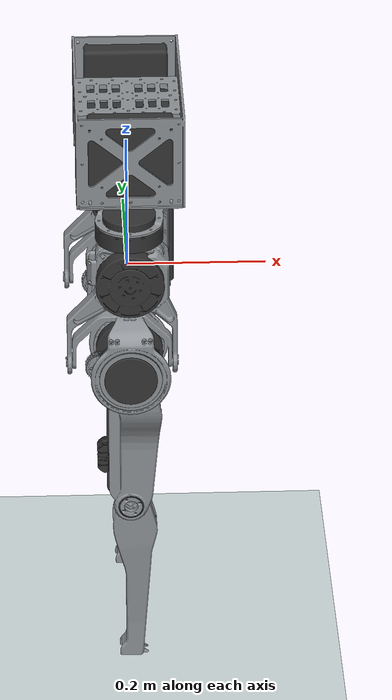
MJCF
<mujoco model="TELLO">

  <size njmax = "500" nconmax = "100" />

  <compiler angle = 'radian' inertiafromgeom = "false" meshdir = "meshes-rev/"/>
  <option timestep='0.001' iterations='50' solver='PGS' gravity='0 0 -9.81'/>
	<default>
    <joint limited='true' damping="10"/>
    <motor ctrllimited='true'/>
    <geom contype='0' conaffinity='0' condim='1' solref="0.0001 5"/><!--solref='0.005 1'-->
    <default class='TELLO'>
    </default>
    <default class='collision'>
      <!-- User parameter for geoms is used to identify collision types -->
      <geom contype='1' user='2' />
      <default class='collision-left'>
        <geom contype='2' conaffinity='4' />
      </default>
      <default class='collision-right'>
        <geom contype='4' conaffinity='2' />
      </default>
    </default>
    <default class='obstacle'>
      <geom material='obstacle' condim='3' contype='8' conaffinity='15' user='1'/>
    </default>
  </default>

  <asset>

    <mesh name="torso_link" file="body_torso-silver.STL"/>
    <mesh name="right_hip_clamp" file="body_left_hipClamp-silver.STL"/>
    <mesh name="right_hip_gimbal" file="body_gimbal.STL"/>
    <mesh name="right_thigh" file="body_left_thigh-silver.STL"/>
    <mesh name="right_shin" file="body_left_shin.STL"/>
    <mesh name="right_foot" file="body_left_foot-silver.STL"/>
    <mesh name="left_hip_clamp" file="body_left_hipClamp-silver.STL"/>
    <mesh name="left_hip_gimbal" file="body_gimbal.STL"/>
    <mesh name="left_thigh" file="body_left_thigh-silver.STL"/>
    <mesh name="left_shin" file="body_left_shin.STL"/>
    <mesh name="left_foot" file="body_left_foot-silver.STL"/>

    <mesh name="torso_link-black" file="body_torso-black.STL"/>
    <mesh name="right_hip_clamp-black" file="body_left_hipClamp-black.STL"/>
    <mesh name="right_thigh-black" file="body_left_thigh-black.STL"/>
    <mesh name="right_foot-black" file="body_left_foot-black.STL"/>
    <mesh name="left_hip_clamp-black" file="body_left_hipClamp-black.STL"/>
    <mesh name="left_thigh-black" file="body_left_thigh-black.STL"/>
    <mesh name="left_foot-black" file="body_left_foot-black.STL"/>

	<mesh name="target1-rounded" file="target.STL"/>

	<texture type = "skybox" builtin = "gradient" width = "128" height = "128" rgb1 = "0.5 0.7 0.8"
         rgb2="0.92 0.74 0.74 "/>
    <texture name = "texgeom" type = "cube" builtin = "flat" mark = "cross" width = "127" height = "1278"
         rgb1 = "0.9 0.7 0.5" rgb2 = "0.8 0.6 0.4" markrgb = "1 1 1" random = "0.01"/>
     <texture name = "texplane" type = "2d" builtin = "checker" width = "512" height = "512" rgb1 = "0.9 0.9 0.95"
         rgb2 = "0.54 0.58 0.62"/>
     <material name = 'MatPlane' reflectance = '0.0' texture = "texplane" texrepeat = "1 1" texuniform = "true"/>

	 <texture name = "texplane2" type = "2d" file="wall4.png" width = "512" height = "512"/>
     <material name = 'MatPlane2' reflectance = '0.0' texture = "texplane2" texrepeat = "1 2" texuniform = "true"/>

	 <texture name = "texplane3" type = "2d" file="aluminum1.png" width = "512" height = "512"/>
     <material name = 'MatPlane3' reflectance = '1000' texture = "texplane3" texrepeat = "10 40" texuniform = "true"/>
     <material name = 'MatPlane4' reflectance = '1000' texture = "texplane3" texrepeat = "50 20" texuniform = "true"/>

	 <texture name = "texplane5" type = "2d" file="tile1.png" width = "512" height = "512"/>
     <material name = 'MatPlane5' reflectance = '0.0' texture = "texplane5" texrepeat = "2 1" texuniform = "true"/>

  </asset>

  <worldbody>

  	<body name = 'dummy' pos = '0 0 0'>
	<inertial pos = '0.0 0.0 0.0' mass = '4.2587' diaginertia = '0.013122 0.0078744 0.013624'/>
	<joint axis = "1 0 0" pos = "0 0 0" name = "move_x" type = "slide" limited = "false" damping="0"/>
		<joint axis = "0 1 0" pos = "0 0 0" name = "move_y" type = "slide" limited = "false" damping="0"/>
		<joint axis = "0 0 1" pos = "0 0 0" name = "move_z" type = "slide" limited = "false" damping="0"/>
		<joint axis = "1 0 0" pos = "0 0 0" name = "rotate_roll" type = "hinge" limited = "false" damping="0"/>
		<joint axis = "0 1 0" pos = "0 0 0" name = "rotate_pitch" type = "hinge" limited = "false" damping="0"/>
		<joint axis = "0 0 1" pos = "0 0 0" name = "rotate_yaw" type = "hinge" limited = "false" damping="0"/>
	</body>

 	<geom name ='floor' pos ='0 0 -0.58' size ='20 10 .125' type = 'plane' material ='MatPlane' rgba="0.79 0.84 0.84 1" condim = '3' conaffinity = '15'/>
	<light directional = 'true' pos = '0 0 3' dir = '0 0 -1' diffuse = '0.2 0.2 0.2' specular = '0 0 0' castshadow="false"/>
    <light name="com_light" mode='trackcom' pos='3 0 3' dir='-1 0 -1' castshadow="true"/>
	<light name="com_light_2" mode='trackcom' pos='0 20 10' dir='0 -1 -1' castshadow="false"/>
	<light name="back_light" mode='trackcom' pos='-30 0 30' dir='1 0 -1' castshadow="false"/>

	<body name = 'torso' mocap="true" pos = '0 0 0'>

		<site name='imu' size='0.01' rgba="0.5 0.5 0.5 0.0" pos='-0.06 0 0.155'/>
        <inertial pos = '0.0 0.0 0.0' mass = '4.2587' diaginertia = '0.013122 0.0078744 0.013624'/>
		<geom quat="0 0 0 1" type="mesh" material ='MatPlane3' rgba="0.549 0.565 0.580 1" mesh="torso_link" contype='0'/>
        <geom quat="0 0 0 1" type="mesh" material ='MatPlane4' rgba="0.2 0.2 0.2 1" mesh="torso_link-black" contype='0'/>
		<geom name="torso_box" pos="0 0 0.01" size="0.07 0.15 0.15" type="box" rgba="0.1 0.4 0.1 0.0" class="collision"/>

		<body name="right_hip_clamp" pos="0 -0.126 0.0545" quat="1 0 0 0" gravcomp="0">

		  <inertial pos="4.44319E-05 -0.011651 -0.006856" quat="0 0 0 1" mass="1.3787" diaginertia="0.00146238287829404 0.00273729393380137 0.0014215626389636"/>
		  <joint name="right_hip_yaw" pos="0 0 0" axis="0 0 1" limited = "true" range = "-0.4363 0.4363" armature=" 0.006"/>
		  <geom type="mesh" material ='MatPlane3' rgba="0.549 0.565 0.580 1" mesh="right_hip_clamp" contype='0'/>
          <geom type="mesh" material ='MatPlane4' rgba="0.2 0.2 0.2 1" mesh="right_hip_clamp-black" contype='0'/>

		  <body name="right_hip_gimbal" pos="0 0 -0.1425" gravcomp="0">

			<inertial pos="-0.0029449 0 0.02492554" quat="0 0 0 1" mass="0.4589" diaginertia="0.000481462682576961 0.000667169674942171 0.000497975686833487"/>
			<joint name="right_hip_roll" pos="0 0 0" axis="1 0 0" limited = "true" range = "-0.6491 0.6491" armature=" 0.006"/>
			<geom type="mesh" material ='MatPlane3' rgba="0.549 0.565 0.580 1" mesh="right_hip_gimbal" contype='0'/>
			<geom name = "right_hip_gimbal_sphere" pos = "0 0 0"  size = "0.06" type="sphere" rgba = "0.1 0.4 0.1 0.0"  class = "collision-right"/>

			<body name="right_thigh" pos="0 0 0" gravcomp="0">

			  <inertial pos="-0.008193 8.0336E-05 -0.0465117" quat="0 0 0 1" mass="1.7145" diaginertia="0.00379144706855402 0.00440910409346791 0.000892300490534084"/>
			  <joint name="right_hip_pitch" pos="0 0 0" axis="0 1 0" limited = "true" range = "-1.5708 0.4014" armature=" 0.006"/>
			  <geom type="mesh" material ='MatPlane3' rgba="0.549 0.565 0.580 1" mesh="right_thigh" contype='0'/>
              <geom type="mesh" material ='MatPlane4' rgba="0.2 0.2 0.2 1" mesh="right_thigh-black" contype='0'/>

			  <body name="right_shin" pos="0 0 -0.2286" gravcomp="0">

				<inertial pos="0.0047419 -0.0003324 -0.104315" quat="0 0 0 1" mass="0.3071" diaginertia="0.00196114277995999 0.00202057471858548 7.91059574612859E-05"/>
				<joint name="right_knee" pos="0 0 0" axis="0 1 0" limited = "true" range = "0.2852 2.0305" armature=" 0.006"/>
				<geom type="mesh" material ='MatPlane3' rgba="0.549 0.565 0.580 1" mesh="right_shin" contype='0'/>
				<geom name = "right_knee_sphere" pos = "0 0 0"  size = "0.03" type="sphere" rgba = "0.1 0.4 0.1 0.0"  class = "collision-right"/>

				<body name="right_foot" pos="0 0 -0.26" quat="0 0 0 1" gravcomp="0">

				  <inertial pos="0.0033954 0 -0.0283579" quat="0 0 0 1" mass="0.14232" diaginertia="1.19095587491302E-05 0.000133626524087711 0.000131614380502955"/>
				  <joint name="right_ankle" pos="0 0 0" axis="0 -1 0" limited = "true" range = "-0.785398 0.785398" armature=" 0.006" damping="1"/>
				  <geom name = "rfoot" type="mesh" material ='MatPlane3' rgba="0.549 0.565 0.580 1" mesh="right_foot" euler="0 0 3.14159265359" contype='0'/>
                  <geom name = "rfootb" type="mesh" material ='MatPlane4' rgba="0.2 0.2 0.2 1" mesh="right_foot-black" euler="0 0 3.14159265359" contype='0'/>
 				  <geom name = "right_foot_heel" pos = "-0.06 0 -0.0516"  size = "0.001" type="sphere" rgba = "0.1 0.4 0.1 0.2"  class = "collision-right"/>
				  <geom name = "right_foot_toe" pos = "0.06 0 -0.0516"  size = "0.001" type="sphere" rgba = "0.1 0.4 0.1 0.2"  class = "collision-right"/>

				  <geom name = "rfh" pos = "-0.06 0 -0.0516"  size = "0.001" type="sphere" rgba = "0.1 0.4 0.1 0.2"  contype='0'/>
				  <geom name = "rft" pos = "0.06 0 -0.0516"  size = "0.001" type="sphere" rgba = "0.1 0.4 0.1 0.2"  contype='0'/>

				</body>

			  </body>

			</body>

		  </body>

		</body>

		<body name="left_hip_clamp" pos="0 0.126 0.0545" quat="1 0 0 0" gravcomp="0">

		  <inertial pos="4.44319E-05 -0.011651 -0.006856" quat="0 0 0 1" mass="1.3787" diaginertia="0.00146238287829404 0.00273729393380137 0.0014215626389636"/>
		  <joint name="left_hip_yaw" pos="0 0 0" axis="0 0 1" limited = "true" range = "-0.4363 0.4363" armature=" 0.006"/>
		  <geom type="mesh" material ='MatPlane3' rgba="0.549 0.565 0.580 1" mesh="left_hip_clamp" contype='0'/>
          <geom type="mesh" material ='MatPlane4' rgba="0.2 0.2 0.2 1" mesh="left_hip_clamp-black" contype='0'/>

		  <body name="left_hip_gimbal" pos="0 0 -0.1425" gravcomp="0">

			<inertial pos="-0.0029449 0 0.02492554" quat="0 0 0 1" mass="0.4589" diaginertia="0.000481462682576961 0.000667169674942171 0.000497975686833487"/>
			<joint name="left_hip_roll" pos="0 0 0" axis="1 0 0" limited = "true" range = "-0.64910 0.6491" armature=" 0.006"/>
			<geom type="mesh" material ='MatPlane3' rgba="0.549 0.565 0.580 1" mesh="left_hip_gimbal" contype='0'/>
			<geom name = "left_hip_gimbal_sphere" pos = "0 0 0"  size = "0.06" type="sphere" rgba = "0.1 0.4 0.1 0.0"  class = "collision-left"/>

			<body name="left_thigh" pos="0 0 0" gravcomp="0">

			  <inertial pos="-0.008193 8.0336E-05 -0.0465117" quat="0 0 0 1" mass="1.7145" diaginertia="0.00379144706855402 0.00440910409346791 0.000892300490534084"/>
			  <joint name="left_hip_pitch" pos="0 0 0" axis="0 1 0" limited = "true" range = "-1.5708 0.4014" armature=" 0.006"/>
			  <geom type="mesh" material ='MatPlane3' rgba="0.549 0.565 0.580 1" mesh="left_thigh" contype='0'/>
              <geom type="mesh" material ='MatPlane4' rgba="0.2 0.2 0.2 1" mesh="left_thigh-black" contype='0'/>

			  <body name="left_shin" pos="0 0 -0.2286" gravcomp="0">

				<inertial pos="0.0047419 -0.0003324 -0.104315" quat="0 0 0 1" mass="0.3071" diaginertia="0.00196114277995999 0.00202057471858548 7.91059574612859E-05"/>
				<joint name="left_knee" pos="0 0 0" axis="0 1 0" limited = "true" range = "0.2852 2.0305" armature=" 0.006"/>
				<geom type="mesh" material ='MatPlane3' rgba="0.549 0.565 0.580 1" mesh="left_shin" contype='0'/>
				<geom name = "left_knee_sphere" pos = "0 0 0"  size = "0.03" type="sphere" rgba = "0.1 0.4 0.1 0.0"  class = "collision-left"/>

				<body name="left_foot" pos="0 0 -0.26" quat="0 0 0 1" gravcomp="0">

				  <inertial pos="0.0033954 0 -0.0283579" quat="0 0 0 1" mass="0.14232" diaginertia="1.19095587491302E-05 0.000133626524087711 0.000131614380502955"/>
				  <joint name="left_ankle" pos="0 0 0" axis="0 -1 0" limited = "true" range = "-0.785398 0.785398" armature=" 0.006" damping="1"/>
				  <geom name = "lfoot" type="mesh" material ='MatPlane3' rgba="0.549 0.565 0.580 1" mesh="left_foot" euler="0 0 3.14159265359" contype='0'/>
                  <geom name = "lfootb" type="mesh" material ='MatPlane4' rgba="0.2 0.2 0.2 1" mesh="left_foot-black" euler="0 0 3.14159265359" contype='0'/>
 				  <geom name = "left_foot_heel" pos = "-0.06 0 -0.0516"  size = "0.001" type="sphere" rgba = "0.1 0.4 0.1 0.2"  class = "collision-left"/>
				  <geom name = "left_foot_toe" pos = "0.06 0 -0.0516"  size = "0.001" type="sphere" rgba = "0.1 0.4 0.1 0.2"  class = "collision-left"/>

				  <geom name = "lfh" pos = "-0.06 0 -0.0516"  size = "0.001" type="sphere" rgba = "0.1 0.4 0.1 0.2"  contype='0'/>
				  <geom name = "lft" pos = "0.06 0 -0.0516"  size = "0.001" type="sphere" rgba = "0.1 0.4 0.1 0.2"  contype='0'/>

				</body>

			  </body>

			</body>

		  </body>

		</body>

	</body>

</worldbody>

<actuator>

	<motor name = 'right_hip_yaw_tq'  joint = 'right_hip_yaw'  gear = '1' ctrllimited = 'true' ctrlrange = '-100 100'/>
	<motor name = 'left_hip_yaw_tq'  joint = 'left_hip_yaw'  gear = '1' ctrllimited = 'true' ctrlrange = '-100 100'/>
	<motor name = 'right_hip_roll_tq'  joint = 'right_hip_roll'  gear = '1' ctrllimited = 'true' ctrlrange = '-100 100'/>
	<motor name = 'left_hip_roll_tq'  joint = 'left_hip_roll'  gear = '1' ctrllimited = 'true' ctrlrange = '-100 100'/>
	<motor name = 'right_hip_pitch_tq'  joint = 'right_hip_pitch'  gear = '1' ctrllimited = 'true' ctrlrange = '-100 100'/>
	<motor name = 'left_hip_pitch_tq'  joint = 'left_hip_pitch'  gear = '1' ctrllimited = 'true' ctrlrange = '-100 100'/>
	<motor name = 'right_knee_tq'  joint = 'right_knee'  gear = '1' ctrllimited = 'true' ctrlrange = '-100 100'/>
	<motor name = 'left_knee_tq'  joint = 'left_knee'  gear = '1' ctrllimited = 'true' ctrlrange = '-100 100'/>
	<motor name = 'right_ankle_tq'  joint = 'right_ankle'  gear = '1' ctrllimited = 'true' ctrlrange = '-100 100'/>
	<motor name = 'left_ankle_tq'  joint = 'left_ankle'  gear = '1' ctrllimited = 'true' ctrlrange = '-100 100'/>

</actuator>

<sensor>
    <gyro name='toso-angular-velocity' site='imu' noise='5e-4' cutoff='34.9'/>
    <accelerometer name='torso-linear-acceleration' site='imu' noise='1e-3' cutoff='157'/>
</sensor>

</mujoco>
